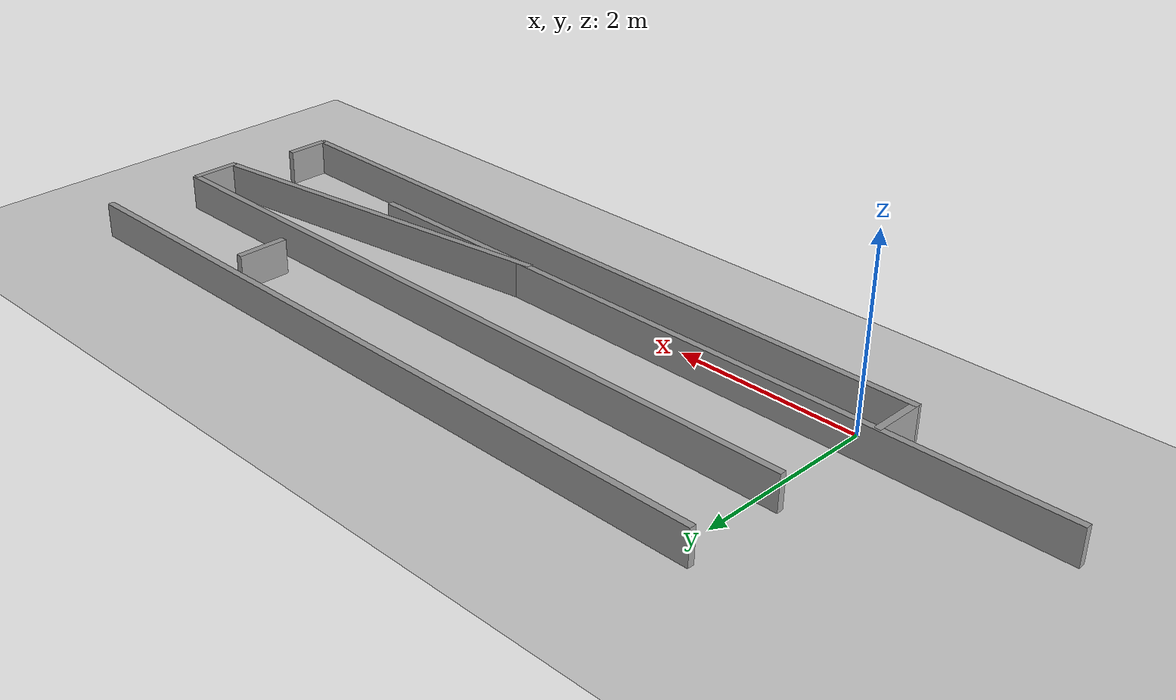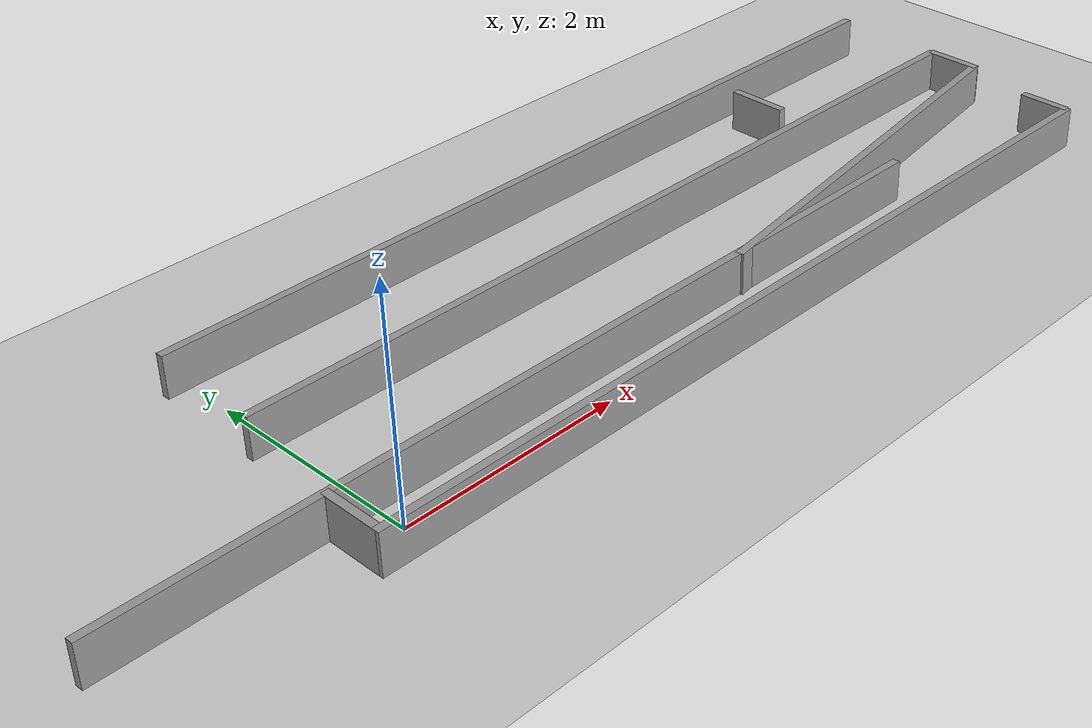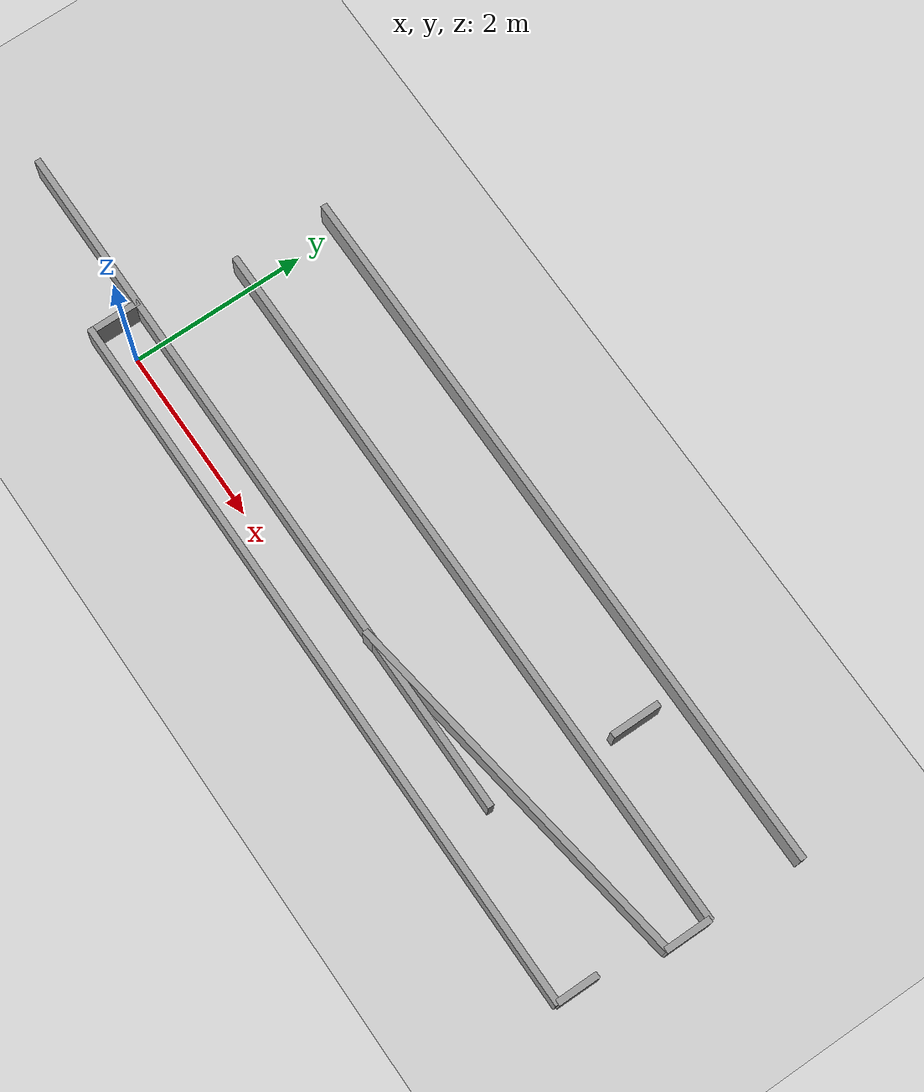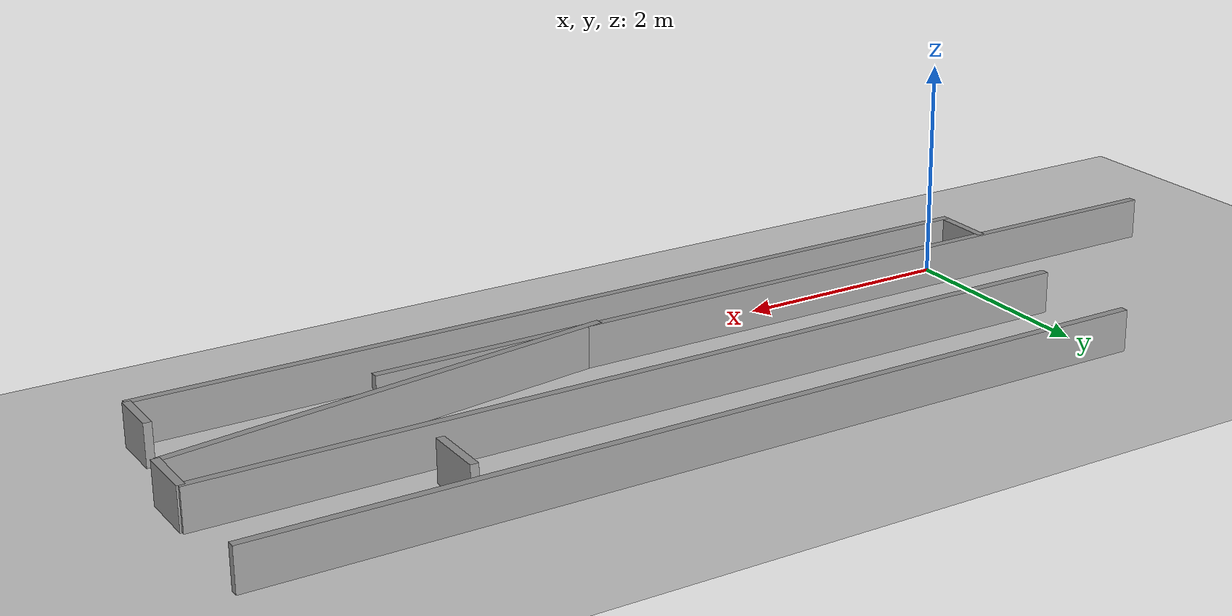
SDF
<sdf version="1.7">
 <world name="default">
  <scene><ambient>0.4 0.4 0.4 1</ambient><background>0.7 0.7 0.7 1</background><shadows>1</shadows></scene>
  <light name="sun" type="directional">
   <pose>0 0 10 0 -0 0</pose>
   <diffuse>0.8 0.8 0.8 1</diffuse>
   <specular>0.2 0.2 0.2 1</specular>
   <attenuation>
    <range>1000</range>
    <constant>0.9</constant>
    <linear>0.01</linear>
    <quadratic>0.001</quadratic>
   </attenuation>
   <direction>-0.5 0.1 -0.9</direction>
   <spot><inner_angle>0</inner_angle><outer_angle>0</outer_angle><falloff>0</falloff></spot>
  </light>
  <model name="ground_plane">
   <static>1</static>
   <link name="link">
    <collision name="collision">
     <geometry><plane><normal>0 0 1</normal><size>100 100</size></plane></geometry>
     <surface>
      <contact><collide_bitmask>65535</collide_bitmask></contact>
      <friction><ode><mu>100</mu><mu2>50</mu2></ode></friction>
     </surface>
    </collision>
    <visual name="visual">
     <cast_shadows>0</cast_shadows>
     <geometry><plane><normal>0 0 1</normal><size>100 100</size></plane></geometry>
     <material>
      <script><uri>file://media/materials/scripts/gazebo.material</uri><name>Gazebo/Grey</name></script>
     </material>
    </visual>
   </link>
  </model>
  <physics type="ode">
   <real_time_update_rate>1000</real_time_update_rate>
   <max_step_size>0.001</max_step_size>
   <real_time_factor>1</real_time_factor>
   <ode>
    <solver>
     <type>quick</type>
     <iters>150</iters>
     <precon_iters>0</precon_iters>
     <sor>1.4</sor>
     <use_dynamic_moi_rescaling>1</use_dynamic_moi_rescaling>
    </solver>
    <constraints>
     <cfm>1e-05</cfm>
     <erp>0.2</erp>
     <contact_max_correcting_vel>2000</contact_max_correcting_vel>
     <contact_surface_layer>0.01</contact_surface_layer>
    </constraints>
   </ode>
  </physics>
  <gravity>0 0 -9.8</gravity>
  <magnetic_field>6e-06 2.3e-05 -4.2e-05</magnetic_field>
  <atmosphere type="adiabatic"/>
  <spherical_coordinates>
   <surface_model>EARTH_WGS84</surface_model>
   <latitude_deg>0</latitude_deg>
   <longitude_deg>0</longitude_deg>
   <elevation>0</elevation>
   <heading_deg>0</heading_deg>
  </spherical_coordinates>
  <model name="turtle_wall_clone_clone_clone">
   <link name="link">
    <inertial>
     <mass>1</mass>
     <inertia>
      <ixx>0.166667</ixx>
      <ixy>0</ixy>
      <ixz>0</ixz>
      <iyy>0.166667</iyy>
      <iyz>0</iyz>
      <izz>0.166667</izz>
     </inertia>
    </inertial>
    <visual name="visual">
     <geometry><box><size>0.472186 0.073048 0.382876</size></box></geometry>
     <material>
      <script><name>Gazebo/Grey</name><uri>file://media/materials/scripts/gazebo.material</uri></script>
      <shader type="pixel"/>
     </material>
    </visual>
    <collision name="collision">
     <geometry><box><size>0.472186 0.073048 0.382876</size></box></geometry>
     <surface>
      <friction>
       <ode><mu>1</mu><mu2>1</mu2><fdir1>0 0 0</fdir1><slip1>0</slip1><slip2>0</slip2></ode>
       <torsional>
        <coefficient>1</coefficient>
        <patch_radius>0</patch_radius>
        <surface_radius>0</surface_radius>
        <use_patch_radius>1</use_patch_radius>
        <ode><slip>0</slip></ode>
       </torsional>
      </friction>
      <bounce><restitution_coefficient>0</restitution_coefficient><threshold>1e+06</threshold></bounce>
      <contact>
       <collide_without_contact>0</collide_without_contact>
       <collide_without_contact_bitmask>1</collide_without_contact_bitmask>
       <collide_bitmask>1</collide_bitmask>
       <ode>
        <soft_cfm>0</soft_cfm>
        <soft_erp>0.2</soft_erp>
        <kp>1e+13</kp>
        <kd>1</kd>
        <max_vel>0.01</max_vel>
        <min_depth>0</min_depth>
       </ode>
       <bullet>
        <split_impulse>1</split_impulse>
        <split_impulse_penetration_threshold>-0.01</split_impulse_penetration_threshold>
        <soft_cfm>0</soft_cfm>
        <soft_erp>0.2</soft_erp>
        <kp>1e+13</kp>
        <kd>1</kd>
       </bullet>
      </contact>
     </surface>
    </collision>
   </link>
   <static>1</static>
   <pose>7.76933 -0.015576 0.191436 0 4e-06 1.57</pose>
  </model>
  <model name="turtle_wall_clone_clone_0_clone">
   <link name="link">
    <inertial>
     <mass>1</mass>
     <inertia>
      <ixx>0.166667</ixx>
      <ixy>0</ixy>
      <ixz>0</ixz>
      <iyy>0.166667</iyy>
      <iyz>0</iyz>
      <izz>0.166667</izz>
     </inertia>
    </inertial>
    <visual name="visual">
     <geometry><box><size>8.20785 0.073048 0.382876</size></box></geometry>
     <material>
      <script><name>Gazebo/Grey</name><uri>file://media/materials/scripts/gazebo.material</uri></script>
      <shader type="pixel"/>
     </material>
    </visual>
    <collision name="collision">
     <geometry><box><size>8.20785 0.073048 0.382876</size></box></geometry>
     <surface>
      <friction>
       <ode><mu>1</mu><mu2>1</mu2><fdir1>0 0 0</fdir1><slip1>0</slip1><slip2>0</slip2></ode>
       <torsional>
        <coefficient>1</coefficient>
        <patch_radius>0</patch_radius>
        <surface_radius>0</surface_radius>
        <use_patch_radius>1</use_patch_radius>
        <ode><slip>0</slip></ode>
       </torsional>
      </friction>
      <bounce><restitution_coefficient>0</restitution_coefficient><threshold>1e+06</threshold></bounce>
      <contact>
       <collide_without_contact>0</collide_without_contact>
       <collide_without_contact_bitmask>1</collide_without_contact_bitmask>
       <collide_bitmask>1</collide_bitmask>
       <ode>
        <soft_cfm>0</soft_cfm>
        <soft_erp>0.2</soft_erp>
        <kp>1e+13</kp>
        <kd>1</kd>
        <max_vel>0.01</max_vel>
        <min_depth>0</min_depth>
       </ode>
       <bullet>
        <split_impulse>1</split_impulse>
        <split_impulse_penetration_threshold>-0.01</split_impulse_penetration_threshold>
        <soft_cfm>0</soft_cfm>
        <soft_erp>0.2</soft_erp>
        <kp>1e+13</kp>
        <kd>1</kd>
       </bullet>
      </contact>
     </surface>
    </collision>
   </link>
   <static>1</static>
   <pose>3.68344 -0.249576 0.191426 0 4e-06 0.000144</pose>
  </model>
  <model name="turtle_wall_clone_clone_clone_clone">
   <link name="link">
    <inertial>
     <mass>1</mass>
     <inertia>
      <ixx>0.166667</ixx>
      <ixy>0</ixy>
      <ixz>0</ixz>
      <iyy>0.166667</iyy>
      <iyz>0</iyz>
      <izz>0.166667</izz>
     </inertia>
    </inertial>
    <visual name="visual">
     <geometry><box><size>0.562318 0.073048 0.382876</size></box></geometry>
     <material>
      <script><name>Gazebo/Grey</name><uri>file://media/materials/scripts/gazebo.material</uri></script>
      <shader type="pixel"/>
     </material>
    </visual>
    <collision name="collision">
     <geometry><box><size>0.562318 0.073048 0.382876</size></box></geometry>
     <surface>
      <friction>
       <ode><mu>1</mu><mu2>1</mu2><fdir1>0 0 0</fdir1><slip1>0</slip1><slip2>0</slip2></ode>
       <torsional>
        <coefficient>1</coefficient>
        <patch_radius>0</patch_radius>
        <surface_radius>0</surface_radius>
        <use_patch_radius>1</use_patch_radius>
        <ode><slip>0</slip></ode>
       </torsional>
      </friction>
      <bounce><restitution_coefficient>0</restitution_coefficient><threshold>1e+06</threshold></bounce>
      <contact>
       <collide_without_contact>0</collide_without_contact>
       <collide_without_contact_bitmask>1</collide_without_contact_bitmask>
       <collide_bitmask>1</collide_bitmask>
       <ode>
        <soft_cfm>0</soft_cfm>
        <soft_erp>0.2</soft_erp>
        <kp>1e+13</kp>
        <kd>1</kd>
        <max_vel>0.01</max_vel>
        <min_depth>0</min_depth>
       </ode>
       <bullet>
        <split_impulse>1</split_impulse>
        <split_impulse_penetration_threshold>-0.01</split_impulse_penetration_threshold>
        <soft_cfm>0</soft_cfm>
        <soft_erp>0.2</soft_erp>
        <kp>1e+13</kp>
        <kd>1</kd>
       </bullet>
      </contact>
     </surface>
    </collision>
   </link>
   <static>1</static>
   <pose>-0.383962 0.030642 0.191436 0 4e-06 1.57</pose>
  </model>
  <model name="turtle_wall_clone_clone_0_clone_0">
   <link name="link">
    <inertial>
     <mass>1</mass>
     <inertia>
      <ixx>0.166667</ixx>
      <ixy>0</ixy>
      <ixz>0</ixz>
      <iyy>0.166667</iyy>
      <iyz>0</iyz>
      <izz>0.166667</izz>
     </inertia>
    </inertial>
    <visual name="visual">
     <geometry><box><size>4.22665 0.073048 0.382876</size></box></geometry>
     <material>
      <script><name>Gazebo/Grey</name><uri>file://media/materials/scripts/gazebo.material</uri></script>
      <shader type="pixel"/>
     </material>
    </visual>
    <collision name="collision">
     <geometry><box><size>4.22665 0.073048 0.382876</size></box></geometry>
     <surface>
      <friction>
       <ode><mu>1</mu><mu2>1</mu2><fdir1>0 0 0</fdir1><slip1>0</slip1><slip2>0</slip2></ode>
       <torsional>
        <coefficient>1</coefficient>
        <patch_radius>0</patch_radius>
        <surface_radius>0</surface_radius>
        <use_patch_radius>1</use_patch_radius>
        <ode><slip>0</slip></ode>
       </torsional>
      </friction>
      <bounce><restitution_coefficient>0</restitution_coefficient><threshold>1e+06</threshold></bounce>
      <contact>
       <collide_without_contact>0</collide_without_contact>
       <collide_without_contact_bitmask>1</collide_without_contact_bitmask>
       <collide_bitmask>1</collide_bitmask>
       <ode>
        <soft_cfm>0</soft_cfm>
        <soft_erp>0.2</soft_erp>
        <kp>1e+13</kp>
        <kd>1</kd>
        <max_vel>0.01</max_vel>
        <min_depth>0</min_depth>
       </ode>
       <bullet>
        <split_impulse>1</split_impulse>
        <split_impulse_penetration_threshold>-0.01</split_impulse_penetration_threshold>
        <soft_cfm>0</soft_cfm>
        <soft_erp>0.2</soft_erp>
        <kp>1e+13</kp>
        <kd>1</kd>
       </bullet>
      </contact>
     </surface>
    </collision>
   </link>
   <static>1</static>
   <pose>5.86606 0.589075 0.191434 1e-06 4e-06 0.14737</pose>
  </model>
  <model name="turtle_wall_clone_clone_clone_clone_1">
   <link name="link">
    <inertial>
     <mass>1</mass>
     <inertia>
      <ixx>0.166667</ixx>
      <ixy>0</ixy>
      <ixz>0</ixz>
      <iyy>0.166667</iyy>
      <iyz>0</iyz>
      <izz>0.166667</izz>
     </inertia>
    </inertial>
    <visual name="visual">
     <geometry><box><size>0.530508 0.073048 0.382876</size></box></geometry>
     <material>
      <script><name>Gazebo/Grey</name><uri>file://media/materials/scripts/gazebo.material</uri></script>
      <shader type="pixel"/>
     </material>
    </visual>
    <collision name="collision">
     <geometry><box><size>0.530508 0.073048 0.382876</size></box></geometry>
     <surface>
      <friction>
       <ode><mu>1</mu><mu2>1</mu2><fdir1>0 0 0</fdir1><slip1>0</slip1><slip2>0</slip2></ode>
       <torsional>
        <coefficient>1</coefficient>
        <patch_radius>0</patch_radius>
        <surface_radius>0</surface_radius>
        <use_patch_radius>1</use_patch_radius>
        <ode><slip>0</slip></ode>
       </torsional>
      </friction>
      <bounce><restitution_coefficient>0</restitution_coefficient><threshold>1e+06</threshold></bounce>
      <contact>
       <collide_without_contact>0</collide_without_contact>
       <collide_without_contact_bitmask>1</collide_without_contact_bitmask>
       <collide_bitmask>1</collide_bitmask>
       <ode>
        <soft_cfm>0</soft_cfm>
        <soft_erp>0.2</soft_erp>
        <kp>1e+13</kp>
        <kd>1</kd>
        <max_vel>0.01</max_vel>
        <min_depth>0</min_depth>
       </ode>
       <bullet>
        <split_impulse>1</split_impulse>
        <split_impulse_penetration_threshold>-0.01</split_impulse_penetration_threshold>
        <soft_cfm>0</soft_cfm>
        <soft_erp>0.2</soft_erp>
        <kp>1e+13</kp>
        <kd>1</kd>
       </bullet>
      </contact>
     </surface>
    </collision>
   </link>
   <static>1</static>
   <pose>7.94909 1.13741 0.191436 0 4e-06 1.57</pose>
  </model>
  <model name="turtle_wall_clone_clone_0_clone_clone">
   <link name="link">
    <inertial>
     <mass>1</mass>
     <inertia>
      <ixx>0.166667</ixx>
      <ixy>0</ixy>
      <ixz>0</ixz>
      <iyy>0.166667</iyy>
      <iyz>0</iyz>
      <izz>0.166667</izz>
     </inertia>
    </inertial>
    <visual name="visual">
     <geometry><box><size>8.20785 0.073048 0.382876</size></box></geometry>
     <material>
      <script><name>Gazebo/Grey</name><uri>file://media/materials/scripts/gazebo.material</uri></script>
      <shader type="pixel"/>
     </material>
    </visual>
    <collision name="collision">
     <geometry><box><size>8.20785 0.073048 0.382876</size></box></geometry>
     <surface>
      <friction>
       <ode><mu>1</mu><mu2>1</mu2><fdir1>0 0 0</fdir1><slip1>0</slip1><slip2>0</slip2></ode>
       <torsional>
        <coefficient>1</coefficient>
        <patch_radius>0</patch_radius>
        <surface_radius>0</surface_radius>
        <use_patch_radius>1</use_patch_radius>
        <ode><slip>0</slip></ode>
       </torsional>
      </friction>
      <bounce><restitution_coefficient>0</restitution_coefficient><threshold>1e+06</threshold></bounce>
      <contact>
       <collide_without_contact>0</collide_without_contact>
       <collide_without_contact_bitmask>1</collide_without_contact_bitmask>
       <collide_bitmask>1</collide_bitmask>
       <ode>
        <soft_cfm>0</soft_cfm>
        <soft_erp>0.2</soft_erp>
        <kp>1e+13</kp>
        <kd>1</kd>
        <max_vel>0.01</max_vel>
        <min_depth>0</min_depth>
       </ode>
       <bullet>
        <split_impulse>1</split_impulse>
        <split_impulse_penetration_threshold>-0.01</split_impulse_penetration_threshold>
        <soft_cfm>0</soft_cfm>
        <soft_erp>0.2</soft_erp>
        <kp>1e+13</kp>
        <kd>1</kd>
       </bullet>
      </contact>
     </surface>
    </collision>
   </link>
   <static>1</static>
   <pose>3.86499 1.39272 0.191426 0 4e-06 0.000144</pose>
  </model>
  <model name="turtle_wall_clone_clone_0_clone_clone_clone">
   <link name="link">
    <inertial>
     <mass>1</mass>
     <inertia>
      <ixx>0.166667</ixx>
      <ixy>0</ixy>
      <ixz>0</ixz>
      <iyy>0.166667</iyy>
      <iyz>0</iyz>
      <izz>0.166667</izz>
     </inertia>
    </inertial>
    <visual name="visual">
     <geometry><box><size>8.20786 0.073048 0.382876</size></box></geometry>
     <material>
      <script><name>Gazebo/Grey</name><uri>file://media/materials/scripts/gazebo.material</uri></script>
      <shader type="pixel"/>
     </material>
    </visual>
    <collision name="collision">
     <geometry><box><size>8.20786 0.073048 0.382876</size></box></geometry>
     <surface>
      <friction>
       <ode><mu>1</mu><mu2>1</mu2><fdir1>0 0 0</fdir1><slip1>0</slip1><slip2>0</slip2></ode>
       <torsional>
        <coefficient>1</coefficient>
        <patch_radius>0</patch_radius>
        <surface_radius>0</surface_radius>
        <use_patch_radius>1</use_patch_radius>
        <ode><slip>0</slip></ode>
       </torsional>
      </friction>
      <bounce><restitution_coefficient>0</restitution_coefficient><threshold>1e+06</threshold></bounce>
      <contact>
       <collide_without_contact>0</collide_without_contact>
       <collide_without_contact_bitmask>1</collide_without_contact_bitmask>
       <collide_bitmask>1</collide_bitmask>
       <ode>
        <soft_cfm>0</soft_cfm>
        <soft_erp>0.2</soft_erp>
        <kp>1e+13</kp>
        <kd>1</kd>
        <max_vel>0.01</max_vel>
        <min_depth>0</min_depth>
       </ode>
       <bullet>
        <split_impulse>1</split_impulse>
        <split_impulse_penetration_threshold>-0.01</split_impulse_penetration_threshold>
        <soft_cfm>0</soft_cfm>
        <soft_erp>0.2</soft_erp>
        <kp>1e+13</kp>
        <kd>1</kd>
       </bullet>
      </contact>
     </surface>
    </collision>
   </link>
   <static>1</static>
   <pose>1.79617 0.29952 0.191425 0 4e-06 0.000144</pose>
  </model>
  <model name="turtle_wall_clone_clone_clone_clone_clone">
   <link name="link">
    <inertial>
     <mass>1</mass>
     <inertia>
      <ixx>0.166667</ixx>
      <ixy>0</ixy>
      <ixz>0</ixz>
      <iyy>0.166667</iyy>
      <iyz>0</iyz>
      <izz>0.166667</izz>
     </inertia>
    </inertial>
    <visual name="visual">
     <geometry><box><size>0.562318 0.073048 0.382876</size></box></geometry>
     <material>
      <script><name>Gazebo/Grey</name><uri>file://media/materials/scripts/gazebo.material</uri></script>
      <shader type="pixel"/>
     </material>
    </visual>
    <collision name="collision">
     <geometry><box><size>0.562318 0.073048 0.382876</size></box></geometry>
     <surface>
      <friction>
       <ode><mu>1</mu><mu2>1</mu2><fdir1>0 0 0</fdir1><slip1>0</slip1><slip2>0</slip2></ode>
       <torsional>
        <coefficient>1</coefficient>
        <patch_radius>0</patch_radius>
        <surface_radius>0</surface_radius>
        <use_patch_radius>1</use_patch_radius>
        <ode><slip>0</slip></ode>
       </torsional>
      </friction>
      <bounce><restitution_coefficient>0</restitution_coefficient><threshold>1e+06</threshold></bounce>
      <contact>
       <collide_without_contact>0</collide_without_contact>
       <collide_without_contact_bitmask>1</collide_without_contact_bitmask>
       <collide_bitmask>1</collide_bitmask>
       <ode>
        <soft_cfm>0</soft_cfm>
        <soft_erp>0.2</soft_erp>
        <kp>1e+13</kp>
        <kd>1</kd>
        <max_vel>0.01</max_vel>
        <min_depth>0</min_depth>
       </ode>
       <bullet>
        <split_impulse>1</split_impulse>
        <split_impulse_penetration_threshold>-0.01</split_impulse_penetration_threshold>
        <soft_cfm>0</soft_cfm>
        <soft_erp>0.2</soft_erp>
        <kp>1e+13</kp>
        <kd>1</kd>
       </bullet>
      </contact>
     </surface>
    </collision>
   </link>
   <static>1</static>
   <pose>5.99025 1.94683 0.191435 0 4e-06 1.57</pose>
  </model>
  <model name="turtle_wall_clone_clone_0_clone_clone_clone_0">
   <link name="link">
    <inertial>
     <mass>1</mass>
     <inertia>
      <ixx>0.166667</ixx>
      <ixy>0</ixy>
      <ixz>0</ixz>
      <iyy>0.166667</iyy>
      <iyz>0</iyz>
      <izz>0.166667</izz>
     </inertia>
    </inertial>
    <visual name="visual">
     <geometry><box><size>8.20785 0.073048 0.382876</size></box></geometry>
     <material>
      <script><name>Gazebo/Grey</name><uri>file://media/materials/scripts/gazebo.material</uri></script>
      <shader type="pixel"/>
     </material>
    </visual>
    <collision name="collision">
     <geometry><box><size>8.20785 0.073048 0.382876</size></box></geometry>
     <surface>
      <friction>
       <ode><mu>1</mu><mu2>1</mu2><fdir1>0 0 0</fdir1><slip1>0</slip1><slip2>0</slip2></ode>
       <torsional>
        <coefficient>1</coefficient>
        <patch_radius>0</patch_radius>
        <surface_radius>0</surface_radius>
        <use_patch_radius>1</use_patch_radius>
        <ode><slip>0</slip></ode>
       </torsional>
      </friction>
      <bounce><restitution_coefficient>0</restitution_coefficient><threshold>1e+06</threshold></bounce>
      <contact>
       <collide_without_contact>0</collide_without_contact>
       <collide_without_contact_bitmask>1</collide_without_contact_bitmask>
       <collide_bitmask>1</collide_bitmask>
       <ode>
        <soft_cfm>0</soft_cfm>
        <soft_erp>0.2</soft_erp>
        <kp>1e+13</kp>
        <kd>1</kd>
        <max_vel>0.01</max_vel>
        <min_depth>0</min_depth>
       </ode>
       <bullet>
        <split_impulse>1</split_impulse>
        <split_impulse_penetration_threshold>-0.01</split_impulse_penetration_threshold>
        <soft_cfm>0</soft_cfm>
        <soft_erp>0.2</soft_erp>
        <kp>1e+13</kp>
        <kd>1</kd>
       </bullet>
      </contact>
     </surface>
    </collision>
   </link>
   <static>1</static>
   <pose>3.89481 2.46629 0.191426 0 4e-06 0.000144</pose>
  </model>
 </world>
</sdf>
